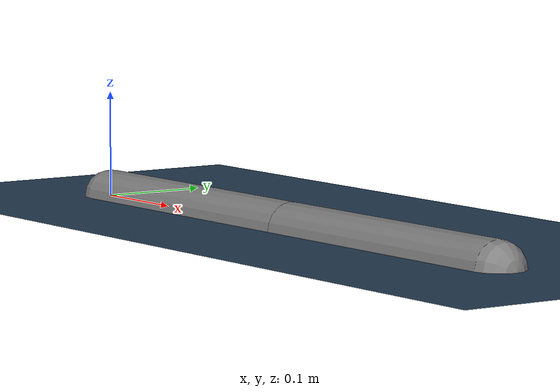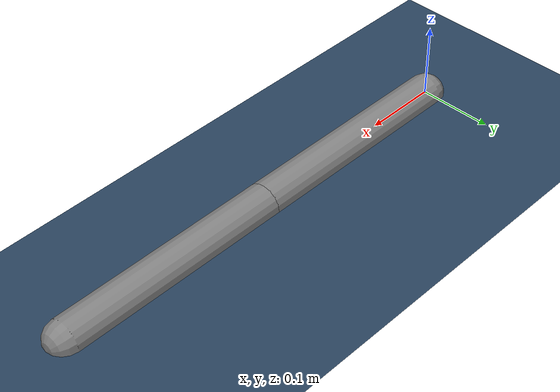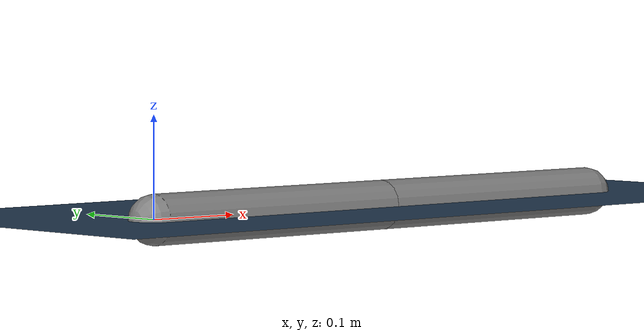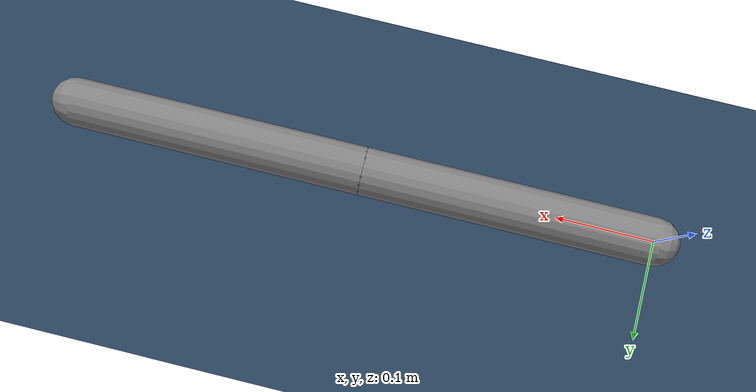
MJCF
<?xml version="1.0" ?>
<mujoco model="neuro_manipulator">
  <compiler angle="degree" coordinate="local" autolimits="true"/>
  <option integrator="RK4" timestep="0.002">
    <flag energy="enable"/>
  </option>
  <asset>
    <texture name="grid" type="2d" builtin="checker" rgb1=".1 .2 .3" rgb2=".2 .3 .4" width="300" height="300"/>
    <material name="grid" texture="grid" texrepeat="1 1"/>
  </asset>
  <worldbody>
    <light pos="0 0 3" dir="0 0 -1" diffuse="1 1 1"/>
    <geom name="floor" type="plane" size="2 2 0.01" material="grid"/>
    <body name="anchor" pos="0 0 0">
      <body name="body_shoulder" pos="0 0 0">
        <joint name="shoulder_joint" type="hinge" axis="0.0 1.0 0.0" stiffness="100.0" damping="1.0"/>
        <inertial pos="0.0 0.0 0.1" mass="1.0" diaginertia="0.01 0.01 0.01"/>
        <geom name="shoulder_link " type="capsule" fromto="0 0 0 0.3 0.0 0.0" size="0.025" rgba="0.5 0.5 0.5 1"/>
        <body name="mount_0" pos="0.3 0.0 0.0">
          <body name="body_elbow" pos="0 0 0">
            <joint name="elbow_joint" type="hinge" axis="0.0 1.0 0.0" stiffness="100.0" damping="1.0"/>
            <inertial pos="0.0 0.0 0.1" mass="0.8" diaginertia="0.01 0.01 0.01"/>
            <geom name="elbow_link " type="capsule" fromto="0 0 0 0.3 0.0 0.0" size="0.025" rgba="0.5 0.5 0.5 1"/>
            <site name="ee_site" pos="0.3 0 0" size="0.01"/>
          </body>
        </body>
      </body>
    </body>
  </worldbody>
  <actuator>
    <motor name="shoulder_motor" joint="shoulder_joint" gear="1"/>
    <motor name="elbow_motor" joint="elbow_joint" gear="1"/>
  </actuator>
</mujoco>
